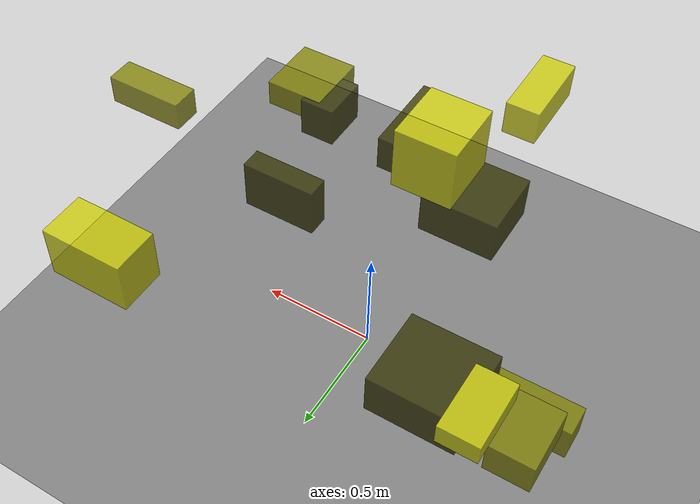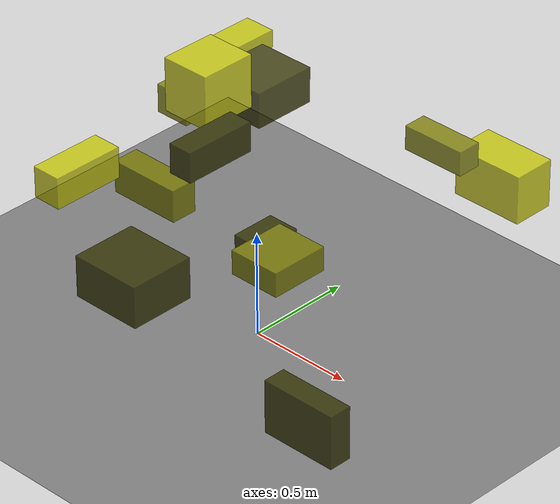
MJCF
<?xml version="1.0"?>
<mujoco model="obstacle_scene">
  <compiler angle="radian" coordinate="local"/>
  <option timestep="0.001" gravity="0 0 -9.81"/>

  <asset>
    <material name="obstacle_mat" rgba="0.8 0.8 0.0 0.8"/>
    <material name="ground_mat" rgba="0.5 0.5 0.5 1"/>
  </asset>

  <worldbody>
    <!-- Ground plane -->
    <geom name="ground" type="plane" size="3 3 0.1" material="ground_mat"/>

    <!-- Obstacles -->
    <body name="obstacle_0" pos="-0.020952 -0.244555 1.027787">
      <geom name="obs_0" type="box" size="0.058172 0.172998 0.070746" rgba="0.2 0.2 0.0 0.8"/>
    </body>
    <body name="obstacle_1" pos="-0.797969 0.172213 0.312744">
      <geom name="obs_1" type="box" size="0.181786 0.065372 0.079574" rgba="0.5 0.5 0.0 0.8"/>
    </body>
    <body name="obstacle_2" pos="-0.322268 -0.707750 0.986318">
      <geom name="obs_2" type="box" size="0.068415 0.168947 0.072856" rgba="0.8 0.8 0.0 0.8"/>
    </body>
    <body name="obstacle_3" pos="0.443076 -0.396160 0.811475">
      <geom name="obs_3" type="box" size="0.073881 0.101261 0.085629" rgba="0.2 0.2 0.0 0.8"/>
    </body>
    <body name="obstacle_4" pos="0.565602 -0.452512 0.844499">
      <geom name="obs_4" type="box" size="0.122307 0.135984 0.056201" rgba="0.5 0.5 0.0 0.8"/>
    </body>
    <body name="obstacle_5" pos="0.736826 0.701955 0.792608">
      <geom name="obs_5" type="box" size="0.171799 0.098723 0.112480" rgba="0.8 0.8 0.0 0.8"/>
    </body>
    <body name="obstacle_6" pos="-0.544739 0.550126 0.772306">
      <geom name="obs_6" type="box" size="0.169371 0.156035 0.086398" rgba="0.2 0.2 0.0 0.8"/>
    </body>
    <body name="obstacle_7" pos="-0.873542 0.486785 0.611163">
      <geom name="obs_7" type="box" size="0.088045 0.127975 0.070411" rgba="0.5 0.5 0.0 0.8"/>
    </body>
    <body name="obstacle_8" pos="-0.212958 -0.064443 1.179151">
      <geom name="obs_8" type="box" size="0.117805 0.132139 0.126320" rgba="0.8 0.8 0.0 0.8"/>
    </body>
    <body name="obstacle_9" pos="-0.185085 -0.541054 0.459975">
      <geom name="obs_9" type="box" size="0.173523 0.157994 0.099932" rgba="0.2 0.2 0.0 0.8"/>
    </body>
    <body name="obstacle_10" pos="0.806535 0.239171 1.176163">
      <geom name="obs_10" type="box" size="0.148389 0.053367 0.055364" rgba="0.5 0.5 0.0 0.8"/>
    </body>
    <body name="obstacle_11" pos="-0.739118 0.631073 0.859288">
      <geom name="obs_11" type="box" size="0.076690 0.137976 0.043400" rgba="0.8 0.8 0.0 0.8"/>
    </body>
    <body name="obstacle_12" pos="0.716261 -0.439917 0.135168">
      <geom name="obs_12" type="box" size="0.186734 0.054267 0.129479" rgba="0.2 0.2 0.0 0.8"/>
    </body>
  </worldbody>
</mujoco>
